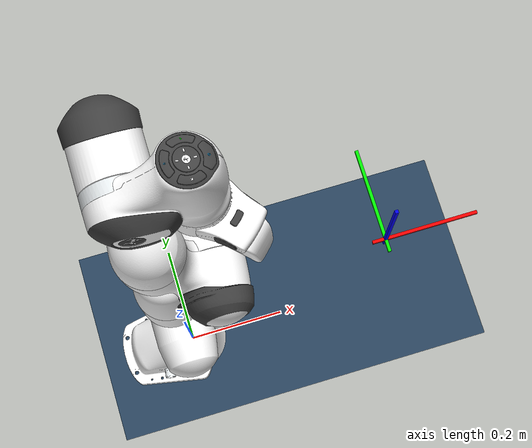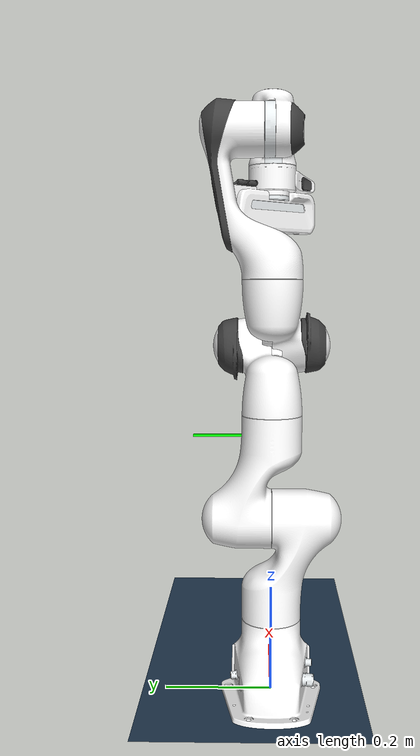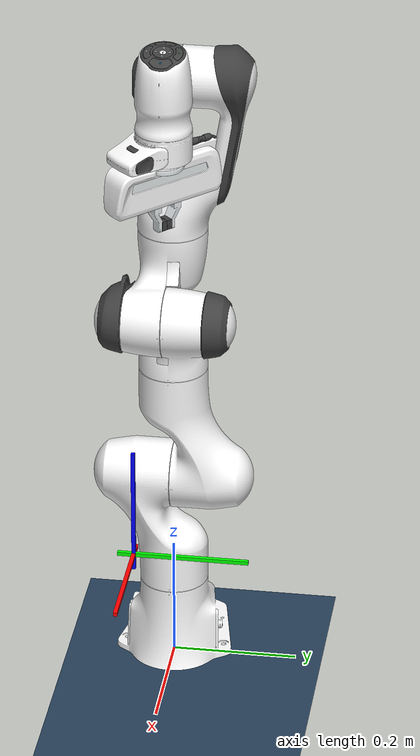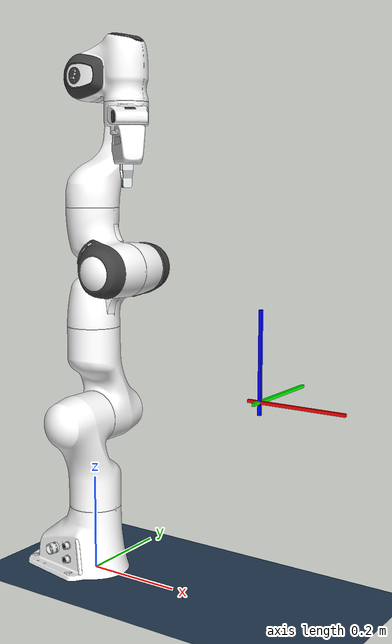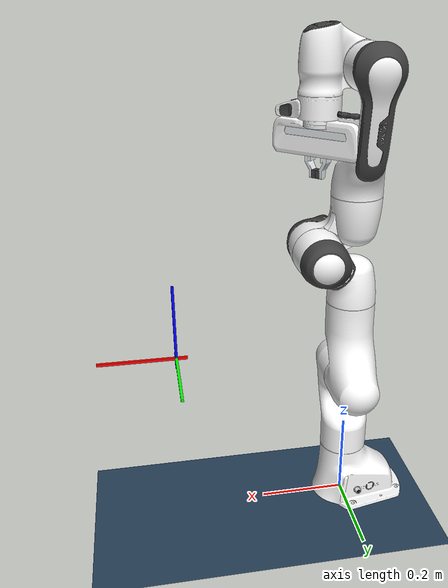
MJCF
<mujoco model="robot scene">
  <compiler angle="radian" meshdir="mujoco_menagerie/franka_emika_panda/assets/" autolimits="true"/>
  <option integrator="implicitfast"/>
  <size nkey="1"/>
  <visual>
    <global azimuth="120" elevation="-20"/>
    <headlight ambient="0.3 0.3 0.3" diffuse="0.6 0.6 0.6" specular="0 0 0"/>
    <rgba haze="0.15 0.25 0.35 1"/>
  </visual>
  <statistic meansize="0.177299" extent="1" center="0.3 0 0.4"/>
  <default class="main">
    <default class="panda">
      <material shininess="0.25"/>
      <joint range="-2.8973 2.8973" armature="0.1" damping="1"/>
      <general ctrlrange="-2.8973 2.8973" forcerange="-87 87" biastype="affine"/>
      <default class="finger">
        <joint type="slide" range="0 0.04"/>
      </default>
      <default class="visual">
        <geom type="mesh" contype="0" conaffinity="0" group="2"/>
      </default>
      <default class="collision">
        <geom type="mesh" group="3"/>
        <default class="fingertip_pad_collision_1">
          <geom size="0.0085 0.004 0.0085" type="box"/>
        </default>
        <default class="fingertip_pad_collision_2">
          <geom size="0.003 0.002 0.003" type="box"/>
        </default>
        <default class="fingertip_pad_collision_3">
          <geom size="0.003 0.002 0.003" type="box"/>
        </default>
        <default class="fingertip_pad_collision_4">
          <geom size="0.003 0.002 0.0035" type="box"/>
        </default>
        <default class="fingertip_pad_collision_5">
          <geom size="0.003 0.002 0.0035" type="box"/>
        </default>
      </default>
    </default>
  </default>
  <asset>
    <texture type="skybox" builtin="gradient" rgb1="0.3 0.5 0.7" rgb2="0 0 0" width="512" height="3072"/>
    <texture type="2d" name="groundplane" builtin="checker" mark="edge" rgb1="0.2 0.3 0.4" rgb2="0.1 0.2 0.3" markrgb="0.8 0.8 0.8" width="300" height="300"/>
    <material name="white" class="panda"/>
    <material name="off_white" class="panda" rgba="0.901961 0.921569 0.929412 1"/>
    <material name="black" class="panda" rgba="0.25 0.25 0.25 1"/>
    <material name="green" class="panda" rgba="0 1 0 1"/>
    <material name="light_blue" class="panda" rgba="0.039216 0.541176 0.780392 1"/>
    <material name="groundplane" texture="groundplane" texuniform="true" texrepeat="5 5" reflectance="0.2"/>
    <mesh name="link0_c" file="link0.stl"/>
    <mesh name="link1_c" file="link1.stl"/>
    <mesh name="link2_c" file="link2.stl"/>
    <mesh name="link3_c" file="link3.stl"/>
    <mesh name="link4_c" file="link4.stl"/>
    <mesh name="link5_c0" file="link5_collision_0.obj"/>
    <mesh name="link5_c1" file="link5_collision_1.obj"/>
    <mesh name="link5_c2" file="link5_collision_2.obj"/>
    <mesh name="link6_c" file="link6.stl"/>
    <mesh name="link7_c" file="link7.stl"/>
    <mesh name="hand_c" file="hand.stl"/>
    <mesh name="link0_0" file="link0_0.obj"/>
    <mesh name="link0_1" file="link0_1.obj"/>
    <mesh name="link0_2" file="link0_2.obj"/>
    <mesh name="link0_3" file="link0_3.obj"/>
    <mesh name="link0_4" file="link0_4.obj"/>
    <mesh name="link0_5" file="link0_5.obj"/>
    <mesh name="link0_7" file="link0_7.obj"/>
    <mesh name="link0_8" file="link0_8.obj"/>
    <mesh name="link0_9" file="link0_9.obj"/>
    <mesh name="link0_10" file="link0_10.obj"/>
    <mesh name="link0_11" file="link0_11.obj"/>
    <mesh name="link1" file="link1.obj"/>
    <mesh name="link2" file="link2.obj"/>
    <mesh name="link3_0" file="link3_0.obj"/>
    <mesh name="link3_1" file="link3_1.obj"/>
    <mesh name="link3_2" file="link3_2.obj"/>
    <mesh name="link3_3" file="link3_3.obj"/>
    <mesh name="link4_0" file="link4_0.obj"/>
    <mesh name="link4_1" file="link4_1.obj"/>
    <mesh name="link4_2" file="link4_2.obj"/>
    <mesh name="link4_3" file="link4_3.obj"/>
    <mesh name="link5_0" file="link5_0.obj"/>
    <mesh name="link5_1" file="link5_1.obj"/>
    <mesh name="link5_2" file="link5_2.obj"/>
    <mesh name="link6_0" file="link6_0.obj"/>
    <mesh name="link6_1" file="link6_1.obj"/>
    <mesh name="link6_2" file="link6_2.obj"/>
    <mesh name="link6_3" file="link6_3.obj"/>
    <mesh name="link6_4" file="link6_4.obj"/>
    <mesh name="link6_5" file="link6_5.obj"/>
    <mesh name="link6_6" file="link6_6.obj"/>
    <mesh name="link6_7" file="link6_7.obj"/>
    <mesh name="link6_8" file="link6_8.obj"/>
    <mesh name="link6_9" file="link6_9.obj"/>
    <mesh name="link6_10" file="link6_10.obj"/>
    <mesh name="link6_11" file="link6_11.obj"/>
    <mesh name="link6_12" file="link6_12.obj"/>
    <mesh name="link6_13" file="link6_13.obj"/>
    <mesh name="link6_14" file="link6_14.obj"/>
    <mesh name="link6_15" file="link6_15.obj"/>
    <mesh name="link6_16" file="link6_16.obj"/>
    <mesh name="link7_0" file="link7_0.obj"/>
    <mesh name="link7_1" file="link7_1.obj"/>
    <mesh name="link7_2" file="link7_2.obj"/>
    <mesh name="link7_3" file="link7_3.obj"/>
    <mesh name="link7_4" file="link7_4.obj"/>
    <mesh name="link7_5" file="link7_5.obj"/>
    <mesh name="link7_6" file="link7_6.obj"/>
    <mesh name="link7_7" file="link7_7.obj"/>
    <mesh name="hand_0" file="hand_0.obj"/>
    <mesh name="hand_1" file="hand_1.obj"/>
    <mesh name="hand_2" file="hand_2.obj"/>
    <mesh name="hand_3" file="hand_3.obj"/>
    <mesh name="hand_4" file="hand_4.obj"/>
    <mesh name="finger_0" file="finger_0.obj"/>
    <mesh name="finger_1" file="finger_1.obj"/>
  </asset>
  <worldbody>
    <geom name="floor" size="0 0 0.05" type="plane" material="groundplane"/>
    <light name="top" pos="0 0 2" dir="0 0 -1" mode="trackcom"/>
    <light pos="0 0 1.5" dir="0 0 -1" directional="true"/>
    <body name="link0" childclass="panda">
      <inertial pos="-0.041018 -0.00014 0.049974" quat="0.00630474 0.751245 0.00741774 0.659952" mass="0.629769" diaginertia="0.00430465 0.00387984 0.00313051"/>
      <geom class="visual" material="off_white" mesh="link0_0"/>
      <geom class="visual" material="black" mesh="link0_1"/>
      <geom class="visual" material="off_white" mesh="link0_2"/>
      <geom class="visual" material="black" mesh="link0_3"/>
      <geom class="visual" material="off_white" mesh="link0_4"/>
      <geom class="visual" material="black" mesh="link0_5"/>
      <geom class="visual" material="white" mesh="link0_7"/>
      <geom class="visual" material="white" mesh="link0_8"/>
      <geom class="visual" material="black" mesh="link0_9"/>
      <geom class="visual" material="off_white" mesh="link0_10"/>
      <geom class="visual" material="white" mesh="link0_11"/>
      <geom class="collision" mesh="link0_c"/>
      <body name="link1" pos="0 0 0.333">
        <inertial pos="0.003875 0.002081 -0.04762" quat="0.711549 0.00634377 -0.0131124 0.702485" mass="4.97068" diaginertia="0.707137 0.703435 0.00852456"/>
        <joint name="joint1" pos="0 0 0" axis="0 0 1"/>
        <geom class="visual" material="white" mesh="link1"/>
        <geom class="collision" mesh="link1_c"/>
        <body name="link2" quat="0.707107 -0.707107 0 0">
          <inertial pos="-0.003141 -0.02872 0.003495" quat="-0.168175 0.828366 -0.122878 0.520027" mass="0.646926" diaginertia="0.0310326 0.0283001 0.00273425"/>
          <joint name="joint2" pos="0 0 0" axis="0 0 1" range="-1.7628 1.7628"/>
          <geom class="visual" material="white" mesh="link2"/>
          <geom class="collision" mesh="link2_c"/>
          <body name="link3" pos="0 -0.316 0" quat="0.707107 0.707107 0 0">
            <inertial pos="0.027518 0.039252 -0.066502" quat="0.662769 -0.00678331 0.252053 0.705096" mass="3.2286" diaginertia="0.0415014 0.0414793 0.00124635"/>
            <joint name="joint3" pos="0 0 0" axis="0 0 1"/>
            <geom class="visual" material="white" mesh="link3_0"/>
            <geom class="visual" material="white" mesh="link3_1"/>
            <geom class="visual" material="white" mesh="link3_2"/>
            <geom class="visual" material="black" mesh="link3_3"/>
            <geom class="collision" mesh="link3_c"/>
            <body name="link4" pos="0.0825 0 0" quat="0.707107 0.707107 0 0">
              <inertial pos="-0.05317 0.104419 0.027454" quat="0.65058 0.529822 -0.0962034 0.535518" mass="3.5879" diaginertia="0.0349596 0.0281483 0.0106201"/>
              <joint name="joint4" pos="0 0 0" axis="0 0 1" range="-3.0718 -0.0698"/>
              <geom class="visual" material="white" mesh="link4_0"/>
              <geom class="visual" material="white" mesh="link4_1"/>
              <geom class="visual" material="black" mesh="link4_2"/>
              <geom class="visual" material="white" mesh="link4_3"/>
              <geom class="collision" mesh="link4_c"/>
              <body name="link5" pos="-0.0825 0.384 0" quat="0.707107 -0.707107 0 0">
                <inertial pos="-0.011953 0.041065 -0.038437" quat="0.987313 -0.0121954 0.0719187 -0.141037" mass="1.22595" diaginertia="0.0367625 0.0288531 0.00803437"/>
                <joint name="joint5" pos="0 0 0" axis="0 0 1"/>
                <geom class="visual" material="black" mesh="link5_0"/>
                <geom class="visual" material="white" mesh="link5_1"/>
                <geom class="visual" material="white" mesh="link5_2"/>
                <geom class="collision" mesh="link5_c0"/>
                <geom class="collision" mesh="link5_c1"/>
                <geom class="collision" mesh="link5_c2"/>
                <body name="link6" quat="0.707107 0.707107 0 0">
                  <inertial pos="0.060149 -0.014117 -0.010517" quat="0.101075 0.59332 0.0287227 0.798079" mass="1.66656" diaginertia="0.00584276 0.00431037 0.00159787"/>
                  <joint name="joint6" pos="0 0 0" axis="0 0 1" range="-0.0175 3.7525"/>
                  <geom class="visual" material="off_white" mesh="link6_0"/>
                  <geom class="visual" material="white" mesh="link6_1"/>
                  <geom class="visual" material="black" mesh="link6_2"/>
                  <geom class="visual" material="white" mesh="link6_3"/>
                  <geom class="visual" material="white" mesh="link6_4"/>
                  <geom class="visual" material="white" mesh="link6_5"/>
                  <geom class="visual" material="white" mesh="link6_6"/>
                  <geom class="visual" material="light_blue" mesh="link6_7"/>
                  <geom class="visual" material="light_blue" mesh="link6_8"/>
                  <geom class="visual" material="black" mesh="link6_9"/>
                  <geom class="visual" material="black" mesh="link6_10"/>
                  <geom class="visual" material="white" mesh="link6_11"/>
                  <geom class="visual" material="green" mesh="link6_12"/>
                  <geom class="visual" material="white" mesh="link6_13"/>
                  <geom class="visual" material="black" mesh="link6_14"/>
                  <geom class="visual" material="black" mesh="link6_15"/>
                  <geom class="visual" material="white" mesh="link6_16"/>
                  <geom class="collision" mesh="link6_c"/>
                  <body name="link7" pos="0.088 0 0" quat="0.707107 0.707107 0 0">
                    <inertial pos="0.010517 -0.004252 0.061597" quat="0.992939 -0.0762041 0.0733595 -0.0537067" mass="0.735522" diaginertia="0.0127345 0.0101055 0.00451803"/>
                    <joint name="joint7" pos="0 0 0" axis="0 0 1"/>
                    <geom class="visual" material="white" mesh="link7_0"/>
                    <geom class="visual" material="black" mesh="link7_1"/>
                    <geom class="visual" material="black" mesh="link7_2"/>
                    <geom class="visual" material="black" mesh="link7_3"/>
                    <geom class="visual" material="black" mesh="link7_4"/>
                    <geom class="visual" material="black" mesh="link7_5"/>
                    <geom class="visual" material="black" mesh="link7_6"/>
                    <geom class="visual" material="white" mesh="link7_7"/>
                    <geom class="collision" mesh="link7_c"/>
                    <body name="hand" pos="0 0 0.107" quat="0.92388 0 0 -0.382683">
                      <inertial pos="-0.01 0 0.03" mass="0.73" diaginertia="0.001 0.0025 0.0017"/>
                      <geom class="visual" material="off_white" mesh="hand_0"/>
                      <geom class="visual" material="black" mesh="hand_1"/>
                      <geom class="visual" material="black" mesh="hand_2"/>
                      <geom class="visual" material="white" mesh="hand_3"/>
                      <geom class="visual" material="off_white" mesh="hand_4"/>
                      <geom class="collision" mesh="hand_c"/>
                      <body name="left_finger" pos="0 0 0.0584">
                        <inertial pos="0 0 0" mass="0.015" diaginertia="2.375e-06 2.375e-06 7.5e-07"/>
                        <joint name="finger_joint1" class="finger" pos="0 0 0" axis="0 1 0"/>
                        <geom class="visual" material="off_white" mesh="finger_0"/>
                        <geom class="visual" material="black" mesh="finger_1"/>
                        <geom class="collision" mesh="finger_0"/>
                        <geom class="fingertip_pad_collision_1" pos="0 0.0055 0.0445"/>
                        <geom class="fingertip_pad_collision_2" pos="0.0055 0.002 0.05"/>
                        <geom class="fingertip_pad_collision_3" pos="-0.0055 0.002 0.05"/>
                        <geom class="fingertip_pad_collision_4" pos="0.0055 0.002 0.0395"/>
                        <geom class="fingertip_pad_collision_5" pos="-0.0055 0.002 0.0395"/>
                      </body>
                      <body name="right_finger" pos="0 0 0.0584" quat="0 0 0 1">
                        <inertial pos="0 0 0" mass="0.015" diaginertia="2.375e-06 2.375e-06 7.5e-07"/>
                        <joint name="finger_joint2" class="finger" pos="0 0 0" axis="0 1 0"/>
                        <geom class="visual" material="off_white" mesh="finger_0"/>
                        <geom class="visual" material="black" mesh="finger_1"/>
                        <geom class="collision" mesh="finger_0"/>
                        <geom class="fingertip_pad_collision_1" pos="0 0.0055 0.0445"/>
                        <geom class="fingertip_pad_collision_2" pos="0.0055 0.002 0.05"/>
                        <geom class="fingertip_pad_collision_3" pos="-0.0055 0.002 0.05"/>
                        <geom class="fingertip_pad_collision_4" pos="0.0055 0.002 0.0395"/>
                        <geom class="fingertip_pad_collision_5" pos="-0.0055 0.002 0.0395"/>
                      </body>
                    </body>
                  </body>
                </body>
              </body>
            </body>
          </body>
        </body>
      </body>
    </body>
    <body name="mocap" pos="0.399069 4.94177e-08 0.417866" mocap="true">
      <site name="mocap_left_site1" pos="0 0 0.075" size="0.003 0.003 0.1" type="box" rgba="0 0 1 1"/>
      <site name="mocap_left_site2" pos="0 0.075 0" size="0.003 0.1 0.003" type="box" rgba="0 1 0 1"/>
      <site name="mocap_left_site3" pos="0.075 0 0" size="0.1 0.003 0.003" type="box" rgba="1 0 0 1"/>
    </body>
  </worldbody>
  <equality>
    <joint joint1="finger_joint1" joint2="finger_joint2" polycoef="0 1 0 0 0" solref="0.005 1" solimp="0.95 0.99 0.001 0.5 2"/>
    <weld body1="mocap" body2="hand" anchor="0 0 0" torquescale="1" relpose="-0.311069 -4.94177e-08 0.508134 0 0.92388 0.382683 0"/>
  </equality>
  <tendon>
    <fixed name="split">
      <joint joint="finger_joint1" coef="0.5"/>
      <joint joint="finger_joint2" coef="0.5"/>
    </fixed>
  </tendon>
  <actuator>
    <general name="actuator1" class="panda" joint="joint1"/>
    <general name="actuator2" class="panda" joint="joint2" ctrlrange="-1.7628 1.7628"/>
    <general name="actuator3" class="panda" joint="joint3"/>
    <general name="actuator4" class="panda" joint="joint4" ctrlrange="-3.0718 -0.0698"/>
    <general name="actuator5" class="panda" joint="joint5" forcerange="-12 12"/>
    <general name="actuator6" class="panda" joint="joint6" ctrlrange="-0.0175 3.7525" forcerange="-12 12"/>
    <general name="actuator7" class="panda" joint="joint7" forcerange="-12 12"/>
    <general name="actuator8" class="panda" tendon="split" ctrlrange="0 255" forcerange="-100 100"/>
  </actuator>
  <keyframe>
    <key name="home" qpos="-1.4717e-05 -0.489478 1.47827e-05 -2.44425 1.04638e-06 1.95407 -2.02767e-06 1.66688e-09 -3.16957e-11"/>
  </keyframe>
</mujoco>
